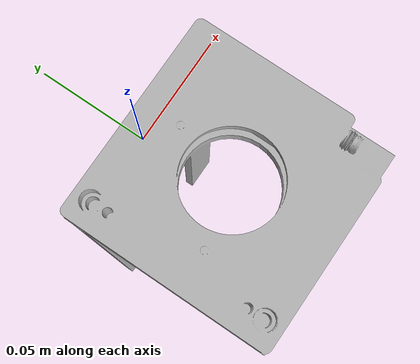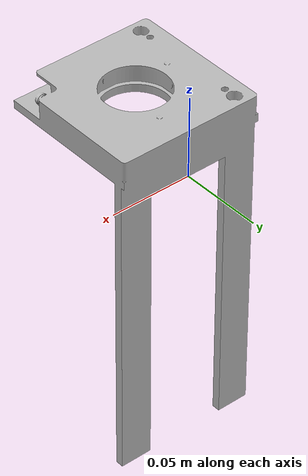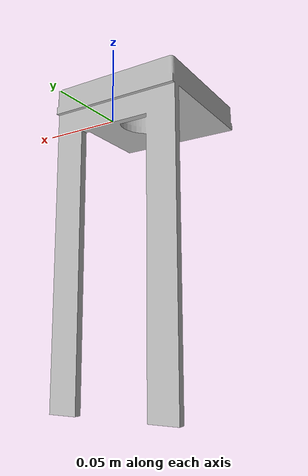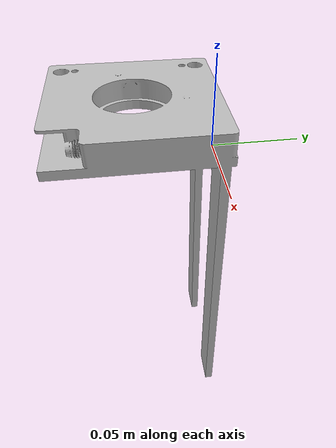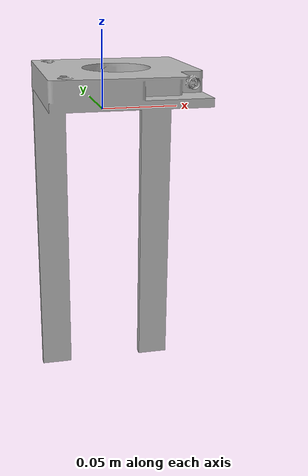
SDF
<?xml version="1.0" ?>
<sdf version="1.6">
  <model name="laser_cross_sensor">
    <link name="link">
      <inertial>
        <mass>1</mass>
      </inertial>
      <collision name="collision">
        <geometry>
          <mesh>
            <uri>model://captron/meshes/sensor_collision.stl</uri>
            <scale>1 1 1</scale>
          </mesh>
        </geometry>
      </collision>
      <visual name="visual">
	    <geometry>
          <mesh>
            <uri>model://captron/meshes/sensor_visual.dae</uri>
          </mesh>
        </geometry>
        <meta>
            <layer> 1 </layer>
        </meta>
      </visual>
    </link>
  </model>
</sdf>
